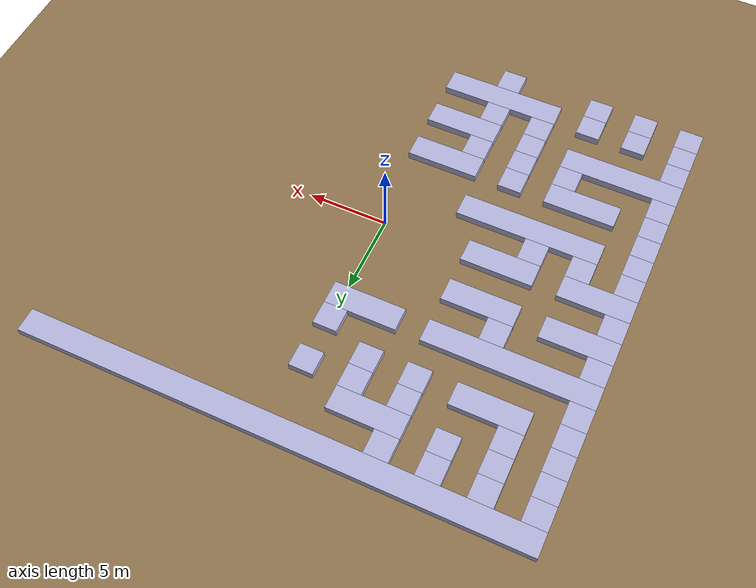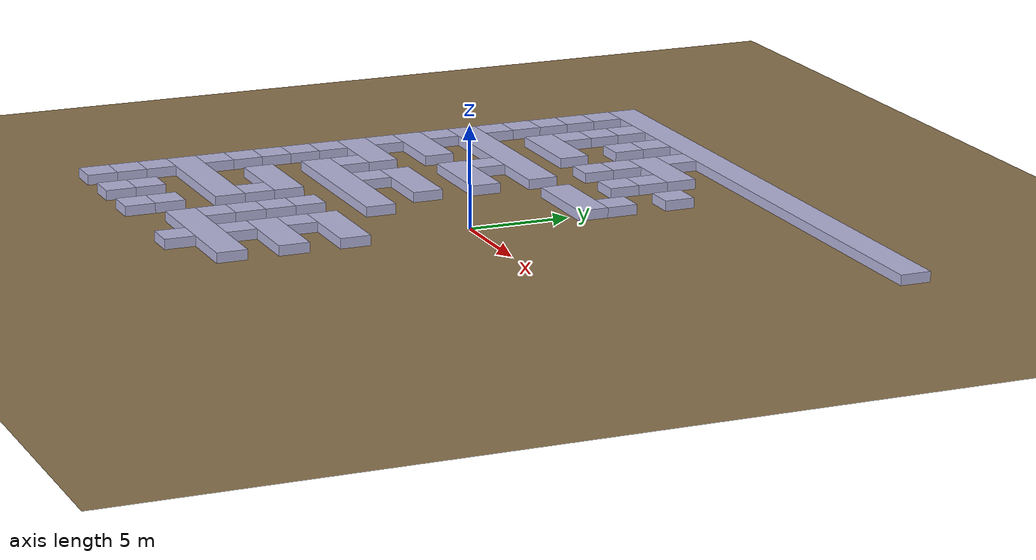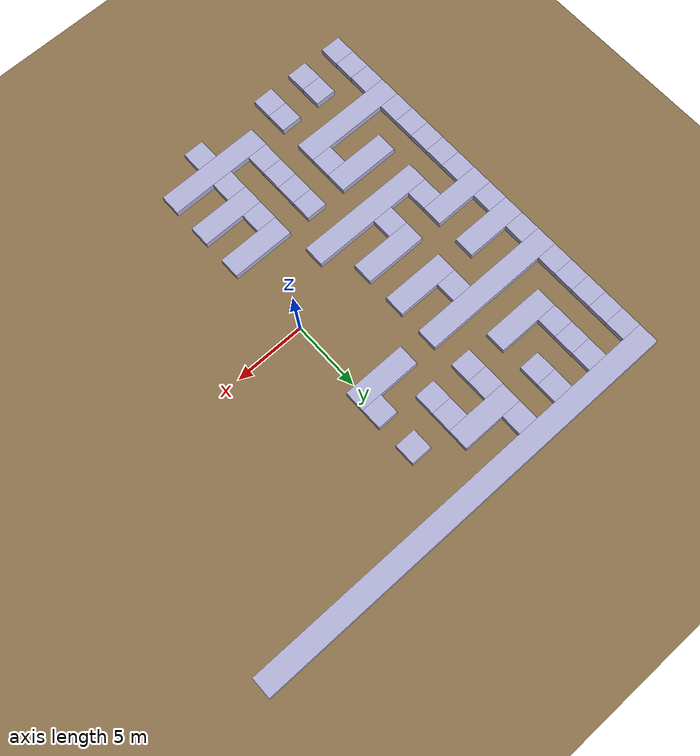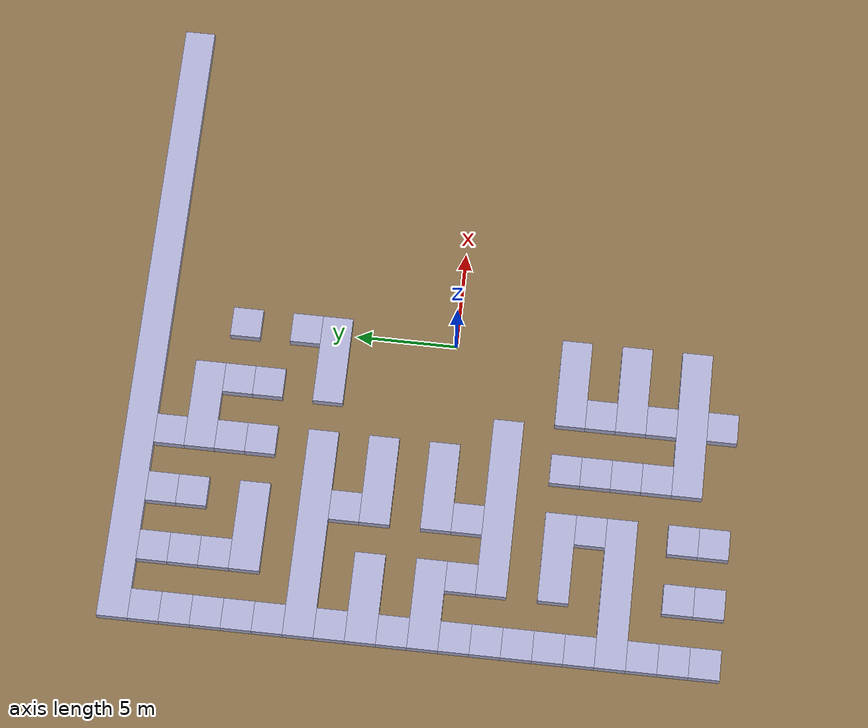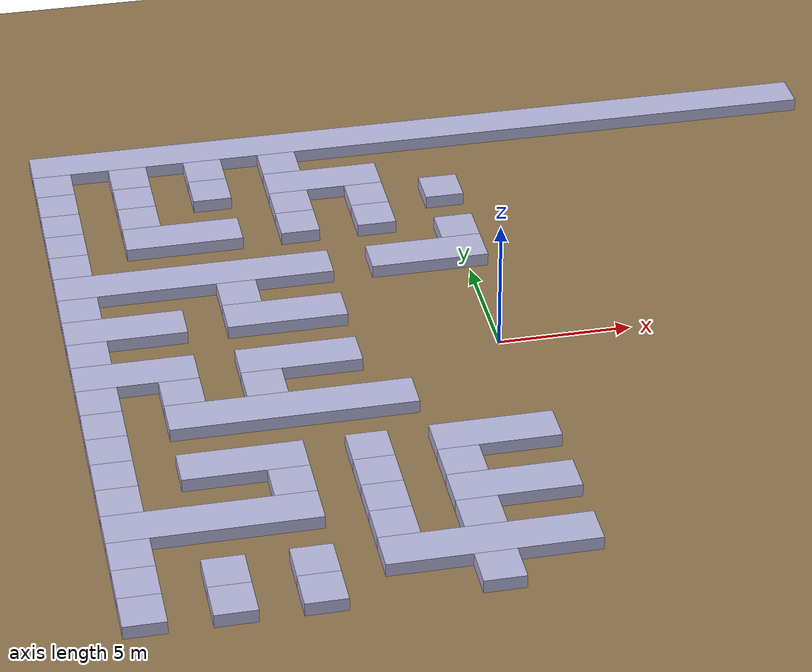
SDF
<sdf version="1.9">
 <world name="maze_world">
  <model name="ground_plane">
   <static>true</static>
   <link name="link">
    <collision name="col">
     <geometry><plane><normal>0 0 1</normal><size>500 500</size></plane></geometry>
     <surface><friction><ode><mu>1.0</mu><mu2>1.0</mu2></ode></friction></surface>
    </collision>
    <visual name="vis">
     <geometry><plane><normal>0 0 1</normal><size>500 500</size></plane></geometry>
     <material><ambient>0.35 0.28 0.20 1</ambient><diffuse>0.55 0.45 0.30 1</diffuse></material>
    </visual>
   </link>
  </model>
  <model name="maze_walls">
   <static>true</static>
   <link name="w0000">
    <pose>0.00000 15.00000 0.25000 0 0 0</pose>
    <collision name="col">
     <geometry><box><size>31.50000 1.50000 0.50000</size></box></geometry>
     <surface><friction><ode><mu>1.0</mu><mu2>1.0</mu2></ode></friction></surface>
    </collision>
    <visual name="vis">
     <geometry><box><size>31.50000 1.50000 0.50000</size></box></geometry>
     <material>
      <ambient>0.45 0.45 0.55 1</ambient>
      <diffuse>0.70 0.70 0.85 1</diffuse>
      <specular>0.15 0.15 0.2 1</specular>
     </material>
    </visual>
   </link>
   <link name="w0001">
    <pose>-15.00000 13.50000 0.25000 0 0 0</pose>
    <collision name="col">
     <geometry><box><size>1.50000 1.50000 0.50000</size></box></geometry>
     <surface><friction><ode><mu>1.0</mu><mu2>1.0</mu2></ode></friction></surface>
    </collision>
    <visual name="vis">
     <geometry><box><size>1.50000 1.50000 0.50000</size></box></geometry>
     <material>
      <ambient>0.45 0.45 0.55 1</ambient>
      <diffuse>0.70 0.70 0.85 1</diffuse>
      <specular>0.15 0.15 0.2 1</specular>
     </material>
    </visual>
   </link>
   <link name="w0002">
    <pose>-12.00000 13.50000 0.25000 0 0 0</pose>
    <collision name="col">
     <geometry><box><size>1.50000 1.50000 0.50000</size></box></geometry>
     <surface><friction><ode><mu>1.0</mu><mu2>1.0</mu2></ode></friction></surface>
    </collision>
    <visual name="vis">
     <geometry><box><size>1.50000 1.50000 0.50000</size></box></geometry>
     <material>
      <ambient>0.45 0.45 0.55 1</ambient>
      <diffuse>0.70 0.70 0.85 1</diffuse>
      <specular>0.15 0.15 0.2 1</specular>
     </material>
    </visual>
   </link>
   <link name="w0003">
    <pose>-9.00000 13.50000 0.25000 0 0 0</pose>
    <collision name="col">
     <geometry><box><size>1.50000 1.50000 0.50000</size></box></geometry>
     <surface><friction><ode><mu>1.0</mu><mu2>1.0</mu2></ode></friction></surface>
    </collision>
    <visual name="vis">
     <geometry><box><size>1.50000 1.50000 0.50000</size></box></geometry>
     <material>
      <ambient>0.45 0.45 0.55 1</ambient>
      <diffuse>0.70 0.70 0.85 1</diffuse>
      <specular>0.15 0.15 0.2 1</specular>
     </material>
    </visual>
   </link>
   <link name="w0004">
    <pose>-6.00000 13.50000 0.25000 0 0 0</pose>
    <collision name="col">
     <geometry><box><size>1.50000 1.50000 0.50000</size></box></geometry>
     <surface><friction><ode><mu>1.0</mu><mu2>1.0</mu2></ode></friction></surface>
    </collision>
    <visual name="vis">
     <geometry><box><size>1.50000 1.50000 0.50000</size></box></geometry>
     <material>
      <ambient>0.45 0.45 0.55 1</ambient>
      <diffuse>0.70 0.70 0.85 1</diffuse>
      <specular>0.15 0.15 0.2 1</specular>
     </material>
    </visual>
   </link>
   <link name="w0008">
    <pose>-15.00000 12.00000 0.25000 0 0 0</pose>
    <collision name="col">
     <geometry><box><size>1.50000 1.50000 0.50000</size></box></geometry>
     <surface><friction><ode><mu>1.0</mu><mu2>1.0</mu2></ode></friction></surface>
    </collision>
    <visual name="vis">
     <geometry><box><size>1.50000 1.50000 0.50000</size></box></geometry>
     <material>
      <ambient>0.45 0.45 0.55 1</ambient>
      <diffuse>0.70 0.70 0.85 1</diffuse>
      <specular>0.15 0.15 0.2 1</specular>
     </material>
    </visual>
   </link>
   <link name="w0009">
    <pose>-12.00000 12.00000 0.25000 0 0 0</pose>
    <collision name="col">
     <geometry><box><size>1.50000 1.50000 0.50000</size></box></geometry>
     <surface><friction><ode><mu>1.0</mu><mu2>1.0</mu2></ode></friction></surface>
    </collision>
    <visual name="vis">
     <geometry><box><size>1.50000 1.50000 0.50000</size></box></geometry>
     <material>
      <ambient>0.45 0.45 0.55 1</ambient>
      <diffuse>0.70 0.70 0.85 1</diffuse>
      <specular>0.15 0.15 0.2 1</specular>
     </material>
    </visual>
   </link>
   <link name="w0010">
    <pose>-9.00000 12.00000 0.25000 0 0 0</pose>
    <collision name="col">
     <geometry><box><size>1.50000 1.50000 0.50000</size></box></geometry>
     <surface><friction><ode><mu>1.0</mu><mu2>1.0</mu2></ode></friction></surface>
    </collision>
    <visual name="vis">
     <geometry><box><size>1.50000 1.50000 0.50000</size></box></geometry>
     <material>
      <ambient>0.45 0.45 0.55 1</ambient>
      <diffuse>0.70 0.70 0.85 1</diffuse>
      <specular>0.15 0.15 0.2 1</specular>
     </material>
    </visual>
   </link>
   <link name="w0011">
    <pose>-4.50000 12.00000 0.25000 0 0 0</pose>
    <collision name="col">
     <geometry><box><size>4.50000 1.50000 0.50000</size></box></geometry>
     <surface><friction><ode><mu>1.0</mu><mu2>1.0</mu2></ode></friction></surface>
    </collision>
    <visual name="vis">
     <geometry><box><size>4.50000 1.50000 0.50000</size></box></geometry>
     <material>
      <ambient>0.45 0.45 0.55 1</ambient>
      <diffuse>0.70 0.70 0.85 1</diffuse>
      <specular>0.15 0.15 0.2 1</specular>
     </material>
    </visual>
   </link>
   <link name="w0015">
    <pose>-15.00000 10.50000 0.25000 0 0 0</pose>
    <collision name="col">
     <geometry><box><size>1.50000 1.50000 0.50000</size></box></geometry>
     <surface><friction><ode><mu>1.0</mu><mu2>1.0</mu2></ode></friction></surface>
    </collision>
    <visual name="vis">
     <geometry><box><size>1.50000 1.50000 0.50000</size></box></geometry>
     <material>
      <ambient>0.45 0.45 0.55 1</ambient>
      <diffuse>0.70 0.70 0.85 1</diffuse>
      <specular>0.15 0.15 0.2 1</specular>
     </material>
    </visual>
   </link>
   <link name="w0016">
    <pose>-12.00000 10.50000 0.25000 0 0 0</pose>
    <collision name="col">
     <geometry><box><size>1.50000 1.50000 0.50000</size></box></geometry>
     <surface><friction><ode><mu>1.0</mu><mu2>1.0</mu2></ode></friction></surface>
    </collision>
    <visual name="vis">
     <geometry><box><size>1.50000 1.50000 0.50000</size></box></geometry>
     <material>
      <ambient>0.45 0.45 0.55 1</ambient>
      <diffuse>0.70 0.70 0.85 1</diffuse>
      <specular>0.15 0.15 0.2 1</specular>
     </material>
    </visual>
   </link>
   <link name="w0017">
    <pose>-6.00000 10.50000 0.25000 0 0 0</pose>
    <collision name="col">
     <geometry><box><size>1.50000 1.50000 0.50000</size></box></geometry>
     <surface><friction><ode><mu>1.0</mu><mu2>1.0</mu2></ode></friction></surface>
    </collision>
    <visual name="vis">
     <geometry><box><size>1.50000 1.50000 0.50000</size></box></geometry>
     <material>
      <ambient>0.45 0.45 0.55 1</ambient>
      <diffuse>0.70 0.70 0.85 1</diffuse>
      <specular>0.15 0.15 0.2 1</specular>
     </material>
    </visual>
   </link>
   <link name="w0018">
    <pose>-3.00000 10.50000 0.25000 0 0 0</pose>
    <collision name="col">
     <geometry><box><size>1.50000 1.50000 0.50000</size></box></geometry>
     <surface><friction><ode><mu>1.0</mu><mu2>1.0</mu2></ode></friction></surface>
    </collision>
    <visual name="vis">
     <geometry><box><size>1.50000 1.50000 0.50000</size></box></geometry>
     <material>
      <ambient>0.45 0.45 0.55 1</ambient>
      <diffuse>0.70 0.70 0.85 1</diffuse>
      <specular>0.15 0.15 0.2 1</specular>
     </material>
    </visual>
   </link>
   <link name="w0019">
    <pose>0.00000 10.50000 0.25000 0 0 0</pose>
    <collision name="col">
     <geometry><box><size>1.50000 1.50000 0.50000</size></box></geometry>
     <surface><friction><ode><mu>1.0</mu><mu2>1.0</mu2></ode></friction></surface>
    </collision>
    <visual name="vis">
     <geometry><box><size>1.50000 1.50000 0.50000</size></box></geometry>
     <material>
      <ambient>0.45 0.45 0.55 1</ambient>
      <diffuse>0.70 0.70 0.85 1</diffuse>
      <specular>0.15 0.15 0.2 1</specular>
     </material>
    </visual>
   </link>
   <link name="w0023">
    <pose>-15.00000 9.00000 0.25000 0 0 0</pose>
    <collision name="col">
     <geometry><box><size>1.50000 1.50000 0.50000</size></box></geometry>
     <surface><friction><ode><mu>1.0</mu><mu2>1.0</mu2></ode></friction></surface>
    </collision>
    <visual name="vis">
     <geometry><box><size>1.50000 1.50000 0.50000</size></box></geometry>
     <material>
      <ambient>0.45 0.45 0.55 1</ambient>
      <diffuse>0.70 0.70 0.85 1</diffuse>
      <specular>0.15 0.15 0.2 1</specular>
     </material>
    </visual>
   </link>
   <link name="w0024">
    <pose>-10.50000 9.00000 0.25000 0 0 0</pose>
    <collision name="col">
     <geometry><box><size>4.50000 1.50000 0.50000</size></box></geometry>
     <surface><friction><ode><mu>1.0</mu><mu2>1.0</mu2></ode></friction></surface>
    </collision>
    <visual name="vis">
     <geometry><box><size>4.50000 1.50000 0.50000</size></box></geometry>
     <material>
      <ambient>0.45 0.45 0.55 1</ambient>
      <diffuse>0.70 0.70 0.85 1</diffuse>
      <specular>0.15 0.15 0.2 1</specular>
     </material>
    </visual>
   </link>
   <link name="w0025">
    <pose>-6.00000 9.00000 0.25000 0 0 0</pose>
    <collision name="col">
     <geometry><box><size>1.50000 1.50000 0.50000</size></box></geometry>
     <surface><friction><ode><mu>1.0</mu><mu2>1.0</mu2></ode></friction></surface>
    </collision>
    <visual name="vis">
     <geometry><box><size>1.50000 1.50000 0.50000</size></box></geometry>
     <material>
      <ambient>0.45 0.45 0.55 1</ambient>
      <diffuse>0.70 0.70 0.85 1</diffuse>
      <specular>0.15 0.15 0.2 1</specular>
     </material>
    </visual>
   </link>
   <link name="w0026">
    <pose>-3.00000 9.00000 0.25000 0 0 0</pose>
    <collision name="col">
     <geometry><box><size>1.50000 1.50000 0.50000</size></box></geometry>
     <surface><friction><ode><mu>1.0</mu><mu2>1.0</mu2></ode></friction></surface>
    </collision>
    <visual name="vis">
     <geometry><box><size>1.50000 1.50000 0.50000</size></box></geometry>
     <material>
      <ambient>0.45 0.45 0.55 1</ambient>
      <diffuse>0.70 0.70 0.85 1</diffuse>
      <specular>0.15 0.15 0.2 1</specular>
     </material>
    </visual>
   </link>
   <link name="w0031">
    <pose>-15.00000 7.50000 0.25000 0 0 0</pose>
    <collision name="col">
     <geometry><box><size>1.50000 1.50000 0.50000</size></box></geometry>
     <surface><friction><ode><mu>1.0</mu><mu2>1.0</mu2></ode></friction></surface>
    </collision>
    <visual name="vis">
     <geometry><box><size>1.50000 1.50000 0.50000</size></box></geometry>
     <material>
      <ambient>0.45 0.45 0.55 1</ambient>
      <diffuse>0.70 0.70 0.85 1</diffuse>
      <specular>0.15 0.15 0.2 1</specular>
     </material>
    </visual>
   </link>
   <link name="w0032">
    <pose>0.00000 7.50000 0.25000 0 0 0</pose>
    <collision name="col">
     <geometry><box><size>1.50000 1.50000 0.50000</size></box></geometry>
     <surface><friction><ode><mu>1.0</mu><mu2>1.0</mu2></ode></friction></surface>
    </collision>
    <visual name="vis">
     <geometry><box><size>1.50000 1.50000 0.50000</size></box></geometry>
     <material>
      <ambient>0.45 0.45 0.55 1</ambient>
      <diffuse>0.70 0.70 0.85 1</diffuse>
      <specular>0.15 0.15 0.2 1</specular>
     </material>
    </visual>
   </link>
   <link name="w0037">
    <pose>-10.50000 6.00000 0.25000 0 0 0</pose>
    <collision name="col">
     <geometry><box><size>10.50000 1.50000 0.50000</size></box></geometry>
     <surface><friction><ode><mu>1.0</mu><mu2>1.0</mu2></ode></friction></surface>
    </collision>
    <visual name="vis">
     <geometry><box><size>10.50000 1.50000 0.50000</size></box></geometry>
     <material>
      <ambient>0.45 0.45 0.55 1</ambient>
      <diffuse>0.70 0.70 0.85 1</diffuse>
      <specular>0.15 0.15 0.2 1</specular>
     </material>
    </visual>
   </link>
   <link name="w0038">
    <pose>-1.50000 6.00000 0.25000 0 0 0</pose>
    <collision name="col">
     <geometry><box><size>4.50000 1.50000 0.50000</size></box></geometry>
     <surface><friction><ode><mu>1.0</mu><mu2>1.0</mu2></ode></friction></surface>
    </collision>
    <visual name="vis">
     <geometry><box><size>4.50000 1.50000 0.50000</size></box></geometry>
     <material>
      <ambient>0.45 0.45 0.55 1</ambient>
      <diffuse>0.70 0.70 0.85 1</diffuse>
      <specular>0.15 0.15 0.2 1</specular>
     </material>
    </visual>
   </link>
   <link name="w0043">
    <pose>-15.00000 4.50000 0.25000 0 0 0</pose>
    <collision name="col">
     <geometry><box><size>1.50000 1.50000 0.50000</size></box></geometry>
     <surface><friction><ode><mu>1.0</mu><mu2>1.0</mu2></ode></friction></surface>
    </collision>
    <visual name="vis">
     <geometry><box><size>1.50000 1.50000 0.50000</size></box></geometry>
     <material>
      <ambient>0.45 0.45 0.55 1</ambient>
      <diffuse>0.70 0.70 0.85 1</diffuse>
      <specular>0.15 0.15 0.2 1</specular>
     </material>
    </visual>
   </link>
   <link name="w0044">
    <pose>-9.00000 4.50000 0.25000 0 0 0</pose>
    <collision name="col">
     <geometry><box><size>1.50000 1.50000 0.50000</size></box></geometry>
     <surface><friction><ode><mu>1.0</mu><mu2>1.0</mu2></ode></friction></surface>
    </collision>
    <visual name="vis">
     <geometry><box><size>1.50000 1.50000 0.50000</size></box></geometry>
     <material>
      <ambient>0.45 0.45 0.55 1</ambient>
      <diffuse>0.70 0.70 0.85 1</diffuse>
      <specular>0.15 0.15 0.2 1</specular>
     </material>
    </visual>
   </link>
   <link name="w0050">
    <pose>-13.50000 3.00000 0.25000 0 0 0</pose>
    <collision name="col">
     <geometry><box><size>4.50000 1.50000 0.50000</size></box></geometry>
     <surface><friction><ode><mu>1.0</mu><mu2>1.0</mu2></ode></friction></surface>
    </collision>
    <visual name="vis">
     <geometry><box><size>4.50000 1.50000 0.50000</size></box></geometry>
     <material>
      <ambient>0.45 0.45 0.55 1</ambient>
      <diffuse>0.70 0.70 0.85 1</diffuse>
      <specular>0.15 0.15 0.2 1</specular>
     </material>
    </visual>
   </link>
   <link name="w0051">
    <pose>-7.50000 3.00000 0.25000 0 0 0</pose>
    <collision name="col">
     <geometry><box><size>4.50000 1.50000 0.50000</size></box></geometry>
     <surface><friction><ode><mu>1.0</mu><mu2>1.0</mu2></ode></friction></surface>
    </collision>
    <visual name="vis">
     <geometry><box><size>4.50000 1.50000 0.50000</size></box></geometry>
     <material>
      <ambient>0.45 0.45 0.55 1</ambient>
      <diffuse>0.70 0.70 0.85 1</diffuse>
      <specular>0.15 0.15 0.2 1</specular>
     </material>
    </visual>
   </link>
   <link name="w0055">
    <pose>-15.00000 1.50000 0.25000 0 0 0</pose>
    <collision name="col">
     <geometry><box><size>1.50000 1.50000 0.50000</size></box></geometry>
     <surface><friction><ode><mu>1.0</mu><mu2>1.0</mu2></ode></friction></surface>
    </collision>
    <visual name="vis">
     <geometry><box><size>1.50000 1.50000 0.50000</size></box></geometry>
     <material>
      <ambient>0.45 0.45 0.55 1</ambient>
      <diffuse>0.70 0.70 0.85 1</diffuse>
      <specular>0.15 0.15 0.2 1</specular>
     </material>
    </visual>
   </link>
   <link name="w0058">
    <pose>-13.50000 0.00000 0.25000 0 0 0</pose>
    <collision name="col">
     <geometry><box><size>4.50000 1.50000 0.50000</size></box></geometry>
     <surface><friction><ode><mu>1.0</mu><mu2>1.0</mu2></ode></friction></surface>
    </collision>
    <visual name="vis">
     <geometry><box><size>4.50000 1.50000 0.50000</size></box></geometry>
     <material>
      <ambient>0.45 0.45 0.55 1</ambient>
      <diffuse>0.70 0.70 0.85 1</diffuse>
      <specular>0.15 0.15 0.2 1</specular>
     </material>
    </visual>
   </link>
   <link name="w0059">
    <pose>-7.50000 0.00000 0.25000 0 0 0</pose>
    <collision name="col">
     <geometry><box><size>4.50000 1.50000 0.50000</size></box></geometry>
     <surface><friction><ode><mu>1.0</mu><mu2>1.0</mu2></ode></friction></surface>
    </collision>
    <visual name="vis">
     <geometry><box><size>4.50000 1.50000 0.50000</size></box></geometry>
     <material>
      <ambient>0.45 0.45 0.55 1</ambient>
      <diffuse>0.70 0.70 0.85 1</diffuse>
      <specular>0.15 0.15 0.2 1</specular>
     </material>
    </visual>
   </link>
   <link name="w0063">
    <pose>-15.00000 -1.50000 0.25000 0 0 0</pose>
    <collision name="col">
     <geometry><box><size>1.50000 1.50000 0.50000</size></box></geometry>
     <surface><friction><ode><mu>1.0</mu><mu2>1.0</mu2></ode></friction></surface>
    </collision>
    <visual name="vis">
     <geometry><box><size>1.50000 1.50000 0.50000</size></box></geometry>
     <material>
      <ambient>0.45 0.45 0.55 1</ambient>
      <diffuse>0.70 0.70 0.85 1</diffuse>
      <specular>0.15 0.15 0.2 1</specular>
     </material>
    </visual>
   </link>
   <link name="w0064">
    <pose>-12.00000 -1.50000 0.25000 0 0 0</pose>
    <collision name="col">
     <geometry><box><size>1.50000 1.50000 0.50000</size></box></geometry>
     <surface><friction><ode><mu>1.0</mu><mu2>1.0</mu2></ode></friction></surface>
    </collision>
    <visual name="vis">
     <geometry><box><size>1.50000 1.50000 0.50000</size></box></geometry>
     <material>
      <ambient>0.45 0.45 0.55 1</ambient>
      <diffuse>0.70 0.70 0.85 1</diffuse>
      <specular>0.15 0.15 0.2 1</specular>
     </material>
    </visual>
   </link>
   <link name="w0065">
    <pose>-9.00000 -1.50000 0.25000 0 0 0</pose>
    <collision name="col">
     <geometry><box><size>1.50000 1.50000 0.50000</size></box></geometry>
     <surface><friction><ode><mu>1.0</mu><mu2>1.0</mu2></ode></friction></surface>
    </collision>
    <visual name="vis">
     <geometry><box><size>1.50000 1.50000 0.50000</size></box></geometry>
     <material>
      <ambient>0.45 0.45 0.55 1</ambient>
      <diffuse>0.70 0.70 0.85 1</diffuse>
      <specular>0.15 0.15 0.2 1</specular>
     </material>
    </visual>
   </link>
   <link name="w0068">
    <pose>-15.00000 -3.00000 0.25000 0 0 0</pose>
    <collision name="col">
     <geometry><box><size>1.50000 1.50000 0.50000</size></box></geometry>
     <surface><friction><ode><mu>1.0</mu><mu2>1.0</mu2></ode></friction></surface>
    </collision>
    <visual name="vis">
     <geometry><box><size>1.50000 1.50000 0.50000</size></box></geometry>
     <material>
      <ambient>0.45 0.45 0.55 1</ambient>
      <diffuse>0.70 0.70 0.85 1</diffuse>
      <specular>0.15 0.15 0.2 1</specular>
     </material>
    </visual>
   </link>
   <link name="w0069">
    <pose>-8.25000 -3.00000 0.25000 0 0 0</pose>
    <collision name="col">
     <geometry><box><size>9.00000 1.50000 0.50000</size></box></geometry>
     <surface><friction><ode><mu>1.0</mu><mu2>1.0</mu2></ode></friction></surface>
    </collision>
    <visual name="vis">
     <geometry><box><size>9.00000 1.50000 0.50000</size></box></geometry>
     <material>
      <ambient>0.45 0.45 0.55 1</ambient>
      <diffuse>0.70 0.70 0.85 1</diffuse>
      <specular>0.15 0.15 0.2 1</specular>
     </material>
    </visual>
   </link>
   <link name="w0072">
    <pose>-15.00000 -4.50000 0.25000 0 0 0</pose>
    <collision name="col">
     <geometry><box><size>1.50000 1.50000 0.50000</size></box></geometry>
     <surface><friction><ode><mu>1.0</mu><mu2>1.0</mu2></ode></friction></surface>
    </collision>
    <visual name="vis">
     <geometry><box><size>1.50000 1.50000 0.50000</size></box></geometry>
     <material>
      <ambient>0.45 0.45 0.55 1</ambient>
      <diffuse>0.70 0.70 0.85 1</diffuse>
      <specular>0.15 0.15 0.2 1</specular>
     </material>
    </visual>
   </link>
   <link name="w0075">
    <pose>-15.00000 -6.00000 0.25000 0 0 0</pose>
    <collision name="col">
     <geometry><box><size>1.50000 1.50000 0.50000</size></box></geometry>
     <surface><friction><ode><mu>1.0</mu><mu2>1.0</mu2></ode></friction></surface>
    </collision>
    <visual name="vis">
     <geometry><box><size>1.50000 1.50000 0.50000</size></box></geometry>
     <material>
      <ambient>0.45 0.45 0.55 1</ambient>
      <diffuse>0.70 0.70 0.85 1</diffuse>
      <specular>0.15 0.15 0.2 1</specular>
     </material>
    </visual>
   </link>
   <link name="w0076">
    <pose>-10.50000 -6.00000 0.25000 0 0 0</pose>
    <collision name="col">
     <geometry><box><size>4.50000 1.50000 0.50000</size></box></geometry>
     <surface><friction><ode><mu>1.0</mu><mu2>1.0</mu2></ode></friction></surface>
    </collision>
    <visual name="vis">
     <geometry><box><size>4.50000 1.50000 0.50000</size></box></geometry>
     <material>
      <ambient>0.45 0.45 0.55 1</ambient>
      <diffuse>0.70 0.70 0.85 1</diffuse>
      <specular>0.15 0.15 0.2 1</specular>
     </material>
    </visual>
   </link>
   <link name="w0077">
    <pose>-6.00000 -6.00000 0.25000 0 0 0</pose>
    <collision name="col">
     <geometry><box><size>1.50000 1.50000 0.50000</size></box></geometry>
     <surface><friction><ode><mu>1.0</mu><mu2>1.0</mu2></ode></friction></surface>
    </collision>
    <visual name="vis">
     <geometry><box><size>1.50000 1.50000 0.50000</size></box></geometry>
     <material>
      <ambient>0.45 0.45 0.55 1</ambient>
      <diffuse>0.70 0.70 0.85 1</diffuse>
      <specular>0.15 0.15 0.2 1</specular>
     </material>
    </visual>
   </link>
   <link name="w0078">
    <pose>-1.50000 -6.00000 0.25000 0 0 0</pose>
    <collision name="col">
     <geometry><box><size>4.50000 1.50000 0.50000</size></box></geometry>
     <surface><friction><ode><mu>1.0</mu><mu2>1.0</mu2></ode></friction></surface>
    </collision>
    <visual name="vis">
     <geometry><box><size>4.50000 1.50000 0.50000</size></box></geometry>
     <material>
      <ambient>0.45 0.45 0.55 1</ambient>
      <diffuse>0.70 0.70 0.85 1</diffuse>
      <specular>0.15 0.15 0.2 1</specular>
     </material>
    </visual>
   </link>
   <link name="w0082">
    <pose>-15.00000 -7.50000 0.25000 0 0 0</pose>
    <collision name="col">
     <geometry><box><size>1.50000 1.50000 0.50000</size></box></geometry>
     <surface><friction><ode><mu>1.0</mu><mu2>1.0</mu2></ode></friction></surface>
    </collision>
    <visual name="vis">
     <geometry><box><size>1.50000 1.50000 0.50000</size></box></geometry>
     <material>
      <ambient>0.45 0.45 0.55 1</ambient>
      <diffuse>0.70 0.70 0.85 1</diffuse>
      <specular>0.15 0.15 0.2 1</specular>
     </material>
    </visual>
   </link>
   <link name="w0083">
    <pose>-9.00000 -7.50000 0.25000 0 0 0</pose>
    <collision name="col">
     <geometry><box><size>1.50000 1.50000 0.50000</size></box></geometry>
     <surface><friction><ode><mu>1.0</mu><mu2>1.0</mu2></ode></friction></surface>
    </collision>
    <visual name="vis">
     <geometry><box><size>1.50000 1.50000 0.50000</size></box></geometry>
     <material>
      <ambient>0.45 0.45 0.55 1</ambient>
      <diffuse>0.70 0.70 0.85 1</diffuse>
      <specular>0.15 0.15 0.2 1</specular>
     </material>
    </visual>
   </link>
   <link name="w0084">
    <pose>-6.00000 -7.50000 0.25000 0 0 0</pose>
    <collision name="col">
     <geometry><box><size>1.50000 1.50000 0.50000</size></box></geometry>
     <surface><friction><ode><mu>1.0</mu><mu2>1.0</mu2></ode></friction></surface>
    </collision>
    <visual name="vis">
     <geometry><box><size>1.50000 1.50000 0.50000</size></box></geometry>
     <material>
      <ambient>0.45 0.45 0.55 1</ambient>
      <diffuse>0.70 0.70 0.85 1</diffuse>
      <specular>0.15 0.15 0.2 1</specular>
     </material>
    </visual>
   </link>
   <link name="w0085">
    <pose>-3.00000 -7.50000 0.25000 0 0 0</pose>
    <collision name="col">
     <geometry><box><size>1.50000 1.50000 0.50000</size></box></geometry>
     <surface><friction><ode><mu>1.0</mu><mu2>1.0</mu2></ode></friction></surface>
    </collision>
    <visual name="vis">
     <geometry><box><size>1.50000 1.50000 0.50000</size></box></geometry>
     <material>
      <ambient>0.45 0.45 0.55 1</ambient>
      <diffuse>0.70 0.70 0.85 1</diffuse>
      <specular>0.15 0.15 0.2 1</specular>
     </material>
    </visual>
   </link>
   <link name="w0090">
    <pose>-12.00000 -9.00000 0.25000 0 0 0</pose>
    <collision name="col">
     <geometry><box><size>7.50000 1.50000 0.50000</size></box></geometry>
     <surface><friction><ode><mu>1.0</mu><mu2>1.0</mu2></ode></friction></surface>
    </collision>
    <visual name="vis">
     <geometry><box><size>7.50000 1.50000 0.50000</size></box></geometry>
     <material>
      <ambient>0.45 0.45 0.55 1</ambient>
      <diffuse>0.70 0.70 0.85 1</diffuse>
      <specular>0.15 0.15 0.2 1</specular>
     </material>
    </visual>
   </link>
   <link name="w0091">
    <pose>-6.00000 -9.00000 0.25000 0 0 0</pose>
    <collision name="col">
     <geometry><box><size>1.50000 1.50000 0.50000</size></box></geometry>
     <surface><friction><ode><mu>1.0</mu><mu2>1.0</mu2></ode></friction></surface>
    </collision>
    <visual name="vis">
     <geometry><box><size>1.50000 1.50000 0.50000</size></box></geometry>
     <material>
      <ambient>0.45 0.45 0.55 1</ambient>
      <diffuse>0.70 0.70 0.85 1</diffuse>
      <specular>0.15 0.15 0.2 1</specular>
     </material>
    </visual>
   </link>
   <link name="w0092">
    <pose>-1.50000 -9.00000 0.25000 0 0 0</pose>
    <collision name="col">
     <geometry><box><size>4.50000 1.50000 0.50000</size></box></geometry>
     <surface><friction><ode><mu>1.0</mu><mu2>1.0</mu2></ode></friction></surface>
    </collision>
    <visual name="vis">
     <geometry><box><size>4.50000 1.50000 0.50000</size></box></geometry>
     <material>
      <ambient>0.45 0.45 0.55 1</ambient>
      <diffuse>0.70 0.70 0.85 1</diffuse>
      <specular>0.15 0.15 0.2 1</specular>
     </material>
    </visual>
   </link>
   <link name="w0095">
    <pose>-15.00000 -10.50000 0.25000 0 0 0</pose>
    <collision name="col">
     <geometry><box><size>1.50000 1.50000 0.50000</size></box></geometry>
     <surface><friction><ode><mu>1.0</mu><mu2>1.0</mu2></ode></friction></surface>
    </collision>
    <visual name="vis">
     <geometry><box><size>1.50000 1.50000 0.50000</size></box></geometry>
     <material>
      <ambient>0.45 0.45 0.55 1</ambient>
      <diffuse>0.70 0.70 0.85 1</diffuse>
      <specular>0.15 0.15 0.2 1</specular>
     </material>
    </visual>
   </link>
   <link name="w0096">
    <pose>-6.00000 -10.50000 0.25000 0 0 0</pose>
    <collision name="col">
     <geometry><box><size>1.50000 1.50000 0.50000</size></box></geometry>
     <surface><friction><ode><mu>1.0</mu><mu2>1.0</mu2></ode></friction></surface>
    </collision>
    <visual name="vis">
     <geometry><box><size>1.50000 1.50000 0.50000</size></box></geometry>
     <material>
      <ambient>0.45 0.45 0.55 1</ambient>
      <diffuse>0.70 0.70 0.85 1</diffuse>
      <specular>0.15 0.15 0.2 1</specular>
     </material>
    </visual>
   </link>
   <link name="w0097">
    <pose>-3.00000 -10.50000 0.25000 0 0 0</pose>
    <collision name="col">
     <geometry><box><size>1.50000 1.50000 0.50000</size></box></geometry>
     <surface><friction><ode><mu>1.0</mu><mu2>1.0</mu2></ode></friction></surface>
    </collision>
    <visual name="vis">
     <geometry><box><size>1.50000 1.50000 0.50000</size></box></geometry>
     <material>
      <ambient>0.45 0.45 0.55 1</ambient>
      <diffuse>0.70 0.70 0.85 1</diffuse>
      <specular>0.15 0.15 0.2 1</specular>
     </material>
    </visual>
   </link>
   <link name="w0100">
    <pose>-15.00000 -12.00000 0.25000 0 0 0</pose>
    <collision name="col">
     <geometry><box><size>1.50000 1.50000 0.50000</size></box></geometry>
     <surface><friction><ode><mu>1.0</mu><mu2>1.0</mu2></ode></friction></surface>
    </collision>
    <visual name="vis">
     <geometry><box><size>1.50000 1.50000 0.50000</size></box></geometry>
     <material>
      <ambient>0.45 0.45 0.55 1</ambient>
      <diffuse>0.70 0.70 0.85 1</diffuse>
      <specular>0.15 0.15 0.2 1</specular>
     </material>
    </visual>
   </link>
   <link name="w0101">
    <pose>-12.00000 -12.00000 0.25000 0 0 0</pose>
    <collision name="col">
     <geometry><box><size>1.50000 1.50000 0.50000</size></box></geometry>
     <surface><friction><ode><mu>1.0</mu><mu2>1.0</mu2></ode></friction></surface>
    </collision>
    <visual name="vis">
     <geometry><box><size>1.50000 1.50000 0.50000</size></box></geometry>
     <material>
      <ambient>0.45 0.45 0.55 1</ambient>
      <diffuse>0.70 0.70 0.85 1</diffuse>
      <specular>0.15 0.15 0.2 1</specular>
     </material>
    </visual>
   </link>
   <link name="w0102">
    <pose>-9.00000 -12.00000 0.25000 0 0 0</pose>
    <collision name="col">
     <geometry><box><size>1.50000 1.50000 0.50000</size></box></geometry>
     <surface><friction><ode><mu>1.0</mu><mu2>1.0</mu2></ode></friction></surface>
    </collision>
    <visual name="vis">
     <geometry><box><size>1.50000 1.50000 0.50000</size></box></geometry>
     <material>
      <ambient>0.45 0.45 0.55 1</ambient>
      <diffuse>0.70 0.70 0.85 1</diffuse>
      <specular>0.15 0.15 0.2 1</specular>
     </material>
    </visual>
   </link>
   <link name="w0103">
    <pose>-3.00000 -12.00000 0.25000 0 0 0</pose>
    <collision name="col">
     <geometry><box><size>7.50000 1.50000 0.50000</size></box></geometry>
     <surface><friction><ode><mu>1.0</mu><mu2>1.0</mu2></ode></friction></surface>
    </collision>
    <visual name="vis">
     <geometry><box><size>7.50000 1.50000 0.50000</size></box></geometry>
     <material>
      <ambient>0.45 0.45 0.55 1</ambient>
      <diffuse>0.70 0.70 0.85 1</diffuse>
      <specular>0.15 0.15 0.2 1</specular>
     </material>
    </visual>
   </link>
   <link name="w0107">
    <pose>-15.00000 -13.50000 0.25000 0 0 0</pose>
    <collision name="col">
     <geometry><box><size>1.50000 1.50000 0.50000</size></box></geometry>
     <surface><friction><ode><mu>1.0</mu><mu2>1.0</mu2></ode></friction></surface>
    </collision>
    <visual name="vis">
     <geometry><box><size>1.50000 1.50000 0.50000</size></box></geometry>
     <material>
      <ambient>0.45 0.45 0.55 1</ambient>
      <diffuse>0.70 0.70 0.85 1</diffuse>
      <specular>0.15 0.15 0.2 1</specular>
     </material>
    </visual>
   </link>
   <link name="w0108">
    <pose>-12.00000 -13.50000 0.25000 0 0 0</pose>
    <collision name="col">
     <geometry><box><size>1.50000 1.50000 0.50000</size></box></geometry>
     <surface><friction><ode><mu>1.0</mu><mu2>1.0</mu2></ode></friction></surface>
    </collision>
    <visual name="vis">
     <geometry><box><size>1.50000 1.50000 0.50000</size></box></geometry>
     <material>
      <ambient>0.45 0.45 0.55 1</ambient>
      <diffuse>0.70 0.70 0.85 1</diffuse>
      <specular>0.15 0.15 0.2 1</specular>
     </material>
    </visual>
   </link>
   <link name="w0109">
    <pose>-9.00000 -13.50000 0.25000 0 0 0</pose>
    <collision name="col">
     <geometry><box><size>1.50000 1.50000 0.50000</size></box></geometry>
     <surface><friction><ode><mu>1.0</mu><mu2>1.0</mu2></ode></friction></surface>
    </collision>
    <visual name="vis">
     <geometry><box><size>1.50000 1.50000 0.50000</size></box></geometry>
     <material>
      <ambient>0.45 0.45 0.55 1</ambient>
      <diffuse>0.70 0.70 0.85 1</diffuse>
      <specular>0.15 0.15 0.2 1</specular>
     </material>
    </visual>
   </link>
   <link name="w0110">
    <pose>-3.00000 -13.50000 0.25000 0 0 0</pose>
    <collision name="col">
     <geometry><box><size>1.50000 1.50000 0.50000</size></box></geometry>
     <surface><friction><ode><mu>1.0</mu><mu2>1.0</mu2></ode></friction></surface>
    </collision>
    <visual name="vis">
     <geometry><box><size>1.50000 1.50000 0.50000</size></box></geometry>
     <material>
      <ambient>0.45 0.45 0.55 1</ambient>
      <diffuse>0.70 0.70 0.85 1</diffuse>
      <specular>0.15 0.15 0.2 1</specular>
     </material>
    </visual>
   </link>
  </model>
 </world>
</sdf>
